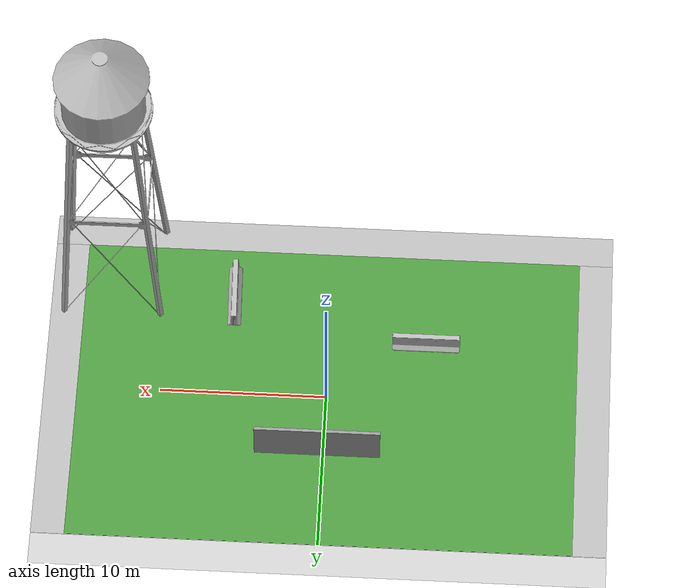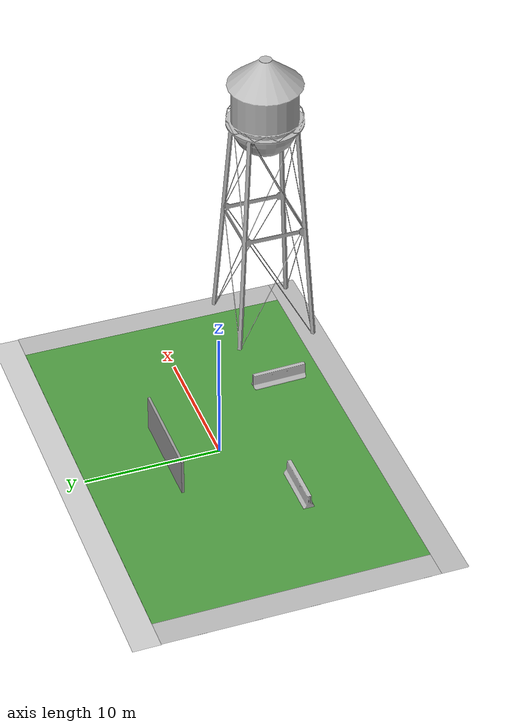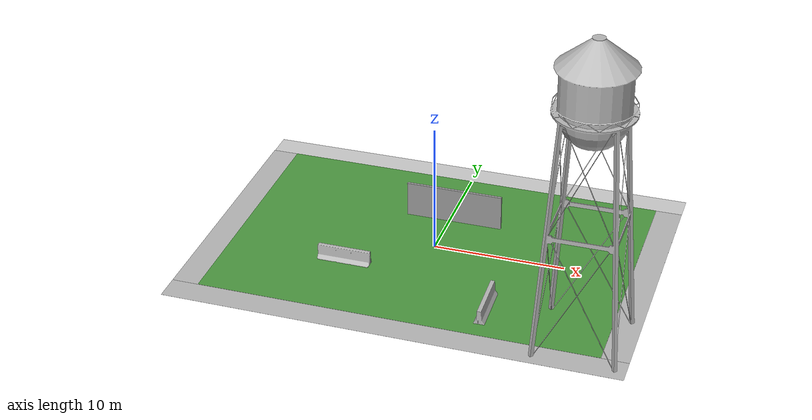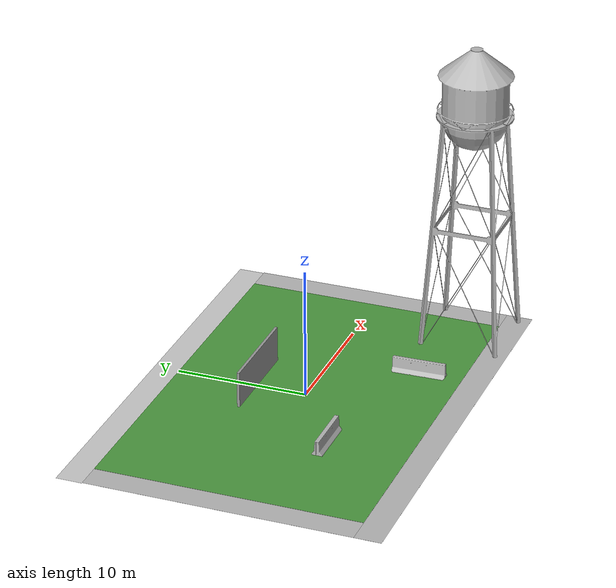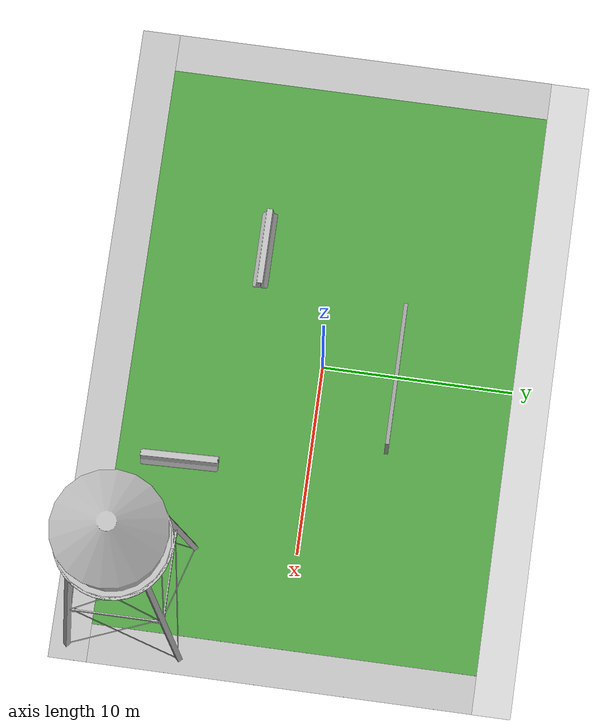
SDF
<sdf version="1.6">
 <world name="default">
  <light name="sun" type="directional">
   <pose>0 0 10 0 -0 0</pose>
   <diffuse>0.8 0.8 0.8 1</diffuse>
   <specular>0.2 0.2 0.2 1</specular>
   <attenuation>
    <range>1000</range>
    <constant>0.9</constant>
    <linear>0.01</linear>
    <quadratic>0.001</quadratic>
   </attenuation>
   <direction>-0.5 0.1 -0.9</direction>
  </light>
  <physics name="default_physics" default="0" type="ode">
   <max_step_size>0.001</max_step_size>
   <real_time_factor>1</real_time_factor>
   <real_time_update_rate>1000</real_time_update_rate>
  </physics>
  <scene><ambient>0.4 0.4 0.4 1</ambient><background>0.7 0.7 0.7 1</background><shadows>1</shadows></scene>
  <model name="grey_wall">
   <static>1</static>
   <link name="link">
    <pose>0 0 1.4 0 -0 0</pose>
    <collision name="collision"><geometry><box><size>7.5 0.2 2.8</size></box></geometry></collision>
    <visual name="visual">
     <cast_shadows>0</cast_shadows>
     <geometry><box><size>7.5 0.2 2.8</size></box></geometry>
     <material>
      <script>
       <uri>model://grey_wall/materials/scripts</uri>
       <uri>model://grey_wall/materials/textures</uri>
       <name>vrc/grey_wall</name>
      </script>
     </material>
    </visual>
    <velocity_decay><linear>0</linear><angular>0</angular></velocity_decay>
   </link>
   <pose>0.364084 3.87455 0 0 -0 0</pose>
  </model>
  <model name="jersey_barrier">
   <static>1</static>
   <link name="link">
    <visual name="visual">
     <geometry><mesh><uri>model://jersey_barrier/meshes/jersey_barrier.dae</uri></mesh></geometry>
    </visual>
    <collision name="upright">
     <pose>0 0 0.5715 0 -0 0</pose>
     <geometry><box><size>4.06542 0.3063 1.143</size></box></geometry>
    </collision>
    <collision name="base">
     <pose>0 0 0.032258 0 -0 0</pose>
     <geometry><box><size>4.06542 0.8107 0.064516</size></box></geometry>
    </collision>
    <collision name="base2">
     <pose>0 0 0.1 0 -0 0</pose>
     <geometry><box><size>4.06542 0.65 0.1</size></box></geometry>
    </collision>
    <collision name="base3">
     <pose>0 0 0.2 0 -0 0</pose>
     <geometry><box><size>4.06542 0.5 0.1</size></box></geometry>
    </collision>
    <collision name="left-angle">
     <pose>0 -0.224 0.2401 0.9 -0 0</pose>
     <geometry><box><size>4.06542 0.5 0.064516</size></box></geometry>
    </collision>
    <collision name="right-angle">
     <pose>0 0.224 0.2401 -0.9 0 0</pose>
     <geometry><box><size>4.06542 0.5 0.064516</size></box></geometry>
    </collision>
    <velocity_decay><linear>0</linear><angular>0</angular></velocity_decay>
   </link>
   <pose>-5.84525 -3.86961 0 0 -0 0</pose>
  </model>
  <model name="jersey_barrier_0">
   <static>1</static>
   <link name="link">
    <visual name="visual">
     <geometry><mesh><uri>model://jersey_barrier/meshes/jersey_barrier.dae</uri></mesh></geometry>
    </visual>
    <collision name="upright">
     <pose>0 0 0.5715 0 -0 0</pose>
     <geometry><box><size>4.06542 0.3063 1.143</size></box></geometry>
    </collision>
    <collision name="base">
     <pose>0 0 0.032258 0 -0 0</pose>
     <geometry><box><size>4.06542 0.8107 0.064516</size></box></geometry>
    </collision>
    <collision name="base2">
     <pose>0 0 0.1 0 -0 0</pose>
     <geometry><box><size>4.06542 0.65 0.1</size></box></geometry>
    </collision>
    <collision name="base3">
     <pose>0 0 0.2 0 -0 0</pose>
     <geometry><box><size>4.06542 0.5 0.1</size></box></geometry>
    </collision>
    <collision name="left-angle">
     <pose>0 -0.224 0.2401 0.9 -0 0</pose>
     <geometry><box><size>4.06542 0.5 0.064516</size></box></geometry>
    </collision>
    <collision name="right-angle">
     <pose>0 0.224 0.2401 -0.9 0 0</pose>
     <geometry><box><size>4.06542 0.5 0.064516</size></box></geometry>
    </collision>
    <velocity_decay><linear>0</linear><angular>0</angular></velocity_decay>
   </link>
   <pose>5.89314 -6.71629 0 0 -0 1.6</pose>
  </model>
  <gravity>0 0 -9.8</gravity>
  <magnetic_field>6e-06 2.3e-05 -4.2e-05</magnetic_field>
  <atmosphere type="adiabatic"/>
  <spherical_coordinates>
   <surface_model>EARTH_WGS84</surface_model>
   <latitude_deg>0</latitude_deg>
   <longitude_deg>0</longitude_deg>
   <elevation>0</elevation>
   <heading_deg>0</heading_deg>
  </spherical_coordinates>
  <model name="robocup_3d_field">
   <static>1</static>
   <link name="field">
    <pose>0 0 0.01 0 -0 0</pose>
    <collision name="collision">
     <geometry><plane><normal>0 0 1</normal><size>30 20</size></plane></geometry>
     <surface><friction><ode><mu>100</mu><mu2>50</mu2></ode></friction></surface>
    </collision>
    <visual name="base1">
     <pose>0 11 0.001 0 -0 0</pose>
     <cast_shadows>0</cast_shadows>
     <geometry><plane><normal>0 0 1</normal><size>34 2</size></plane></geometry>
     <material>
      <script>
       <uri>model://robocup_3Dsim_field/materials/scripts/</uri>
       <uri>model://robocup_3Dsim_field/materials/textures/</uri>
       <name>RoboCup/FieldBorder</name>
      </script>
     </material>
    </visual>
    <visual name="base2">
     <pose>0 -11 0.001 0 -0 0</pose>
     <cast_shadows>0</cast_shadows>
     <geometry><plane><normal>0 0 1</normal><size>34 2</size></plane></geometry>
     <material>
      <script>
       <uri>model://robocup_3Dsim_field/materials/scripts/</uri>
       <uri>model://robocup_3Dsim_field/materials/textures/</uri>
       <name>RoboCup/FieldBorder</name>
      </script>
     </material>
    </visual>
    <visual name="base3">
     <pose>16 0 0.001 0 -0 0</pose>
     <cast_shadows>0</cast_shadows>
     <geometry><plane><normal>0 0 1</normal><size>2 20</size></plane></geometry>
     <material>
      <script>
       <uri>model://robocup_3Dsim_field/materials/scripts/</uri>
       <uri>model://robocup_3Dsim_field/materials/textures/</uri>
       <name>RoboCup/FieldBorder</name>
      </script>
     </material>
    </visual>
    <visual name="base4">
     <pose>-16 0 0.001 0 -0 0</pose>
     <cast_shadows>0</cast_shadows>
     <geometry><plane><normal>0 0 1</normal><size>2 20</size></plane></geometry>
     <material>
      <script>
       <uri>model://robocup_3Dsim_field/materials/scripts/</uri>
       <uri>model://robocup_3Dsim_field/materials/textures/</uri>
       <name>RoboCup/FieldBorder</name>
      </script>
     </material>
    </visual>
    <visual name="carpet">
     <cast_shadows>0</cast_shadows>
     <geometry><plane><normal>0 0 1</normal><size>30 20</size></plane></geometry>
     <material>
      <script>
       <uri>model://robocup_3Dsim_field/materials/scripts/</uri>
       <uri>model://robocup_3Dsim_field/materials/textures/</uri>
       <name>RoboCup/Grass</name>
      </script>
     </material>
    </visual>
   </link>
   <pose>0.004433 0.007128 0 0 -0 0</pose>
  </model>
  <model name="water_tower">
   <static>1</static>
   <link name="link">
    <collision name="collision">
     <geometry><mesh><uri>model://water_tower/meshes/water_tower.dae</uri></mesh></geometry>
    </collision>
    <visual name="visual">
     <geometry><mesh><uri>model://water_tower/meshes/water_tower.dae</uri></mesh></geometry>
    </visual>
   </link>
   <pose>13.2646 -8.20032 0 0 -0 0</pose>
  </model>
 </world>
</sdf>
